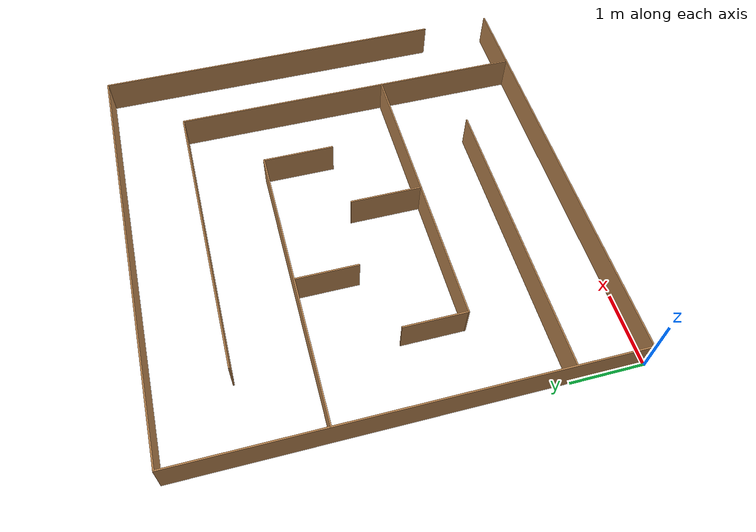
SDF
<?xml version='1.0'?>
<sdf version='1.6'>
  <model name='Circuite2'>
    <pose frame=''>3.00137 3.00193 0 0 -0 0</pose>
    <link name='Wall_10'>
      <collision name='Wall_10_Collision'>
        <geometry>
          <box>
            <size>6 0.02 0.5</size>
          </box>
        </geometry>
        <pose frame=''>0 0 0.25 0 -0 0</pose>
      </collision>
      <visual name='Wall_10_Visual'>
        <pose frame=''>0 0 0.25 0 -0 0</pose>
        <geometry>
          <box>
            <size>6 0.02 0.5</size>
          </box>
        </geometry>
        <material>
          <script>
            <uri>file://media/materials/scripts/gazebo.material</uri>
            <name>Gazebo/Wood</name>
          </script>
          <ambient>1 1 1 1</ambient>
        </material>
        <meta>
          <layer>0</layer>
        </meta>
      </visual>
      <pose frame=''>-0.000633 -2.99006 0 0 -0 3.14159</pose>
    </link>
    <link name='Wall_12'>
      <collision name='Wall_12_Collision'>
        <geometry>
          <box>
            <size>6 0.02 0.5</size>
          </box>
        </geometry>
        <pose frame=''>0 0 0.25 0 -0 0</pose>
      </collision>
      <visual name='Wall_12_Visual'>
        <pose frame=''>0 0 0.25 0 -0 0</pose>
        <geometry>
          <box>
            <size>6 0.02 0.5</size>
          </box>
        </geometry>
        <material>
          <script>
            <uri>file://media/materials/scripts/gazebo.material</uri>
            <name>Gazebo/Wood</name>
          </script>
          <ambient>1 1 1 1</ambient>
        </material>
        <meta>
          <layer>0</layer>
        </meta>
      </visual>
      <pose frame=''>-2.98997 4.8e-05 0 0 -0 -1.5708</pose>
    </link>
    <link name='Wall_14'>
      <collision name='Wall_14_Collision'>
        <geometry>
          <box>
            <size>6 0.02 0.5</size>
          </box>
        </geometry>
        <pose frame=''>0 0 0.25 0 -0 0</pose>
      </collision>
      <visual name='Wall_14_Visual'>
        <pose frame=''>0 0 0.25 0 -0 0</pose>
        <geometry>
          <box>
            <size>6 0.02 0.5</size>
          </box>
        </geometry>
        <material>
          <script>
            <uri>file://media/materials/scripts/gazebo.material</uri>
            <name>Gazebo/Wood</name>
          </script>
          <ambient>1 1 1 1</ambient>
        </material>
        <meta>
          <layer>0</layer>
        </meta>
      </visual>
      <pose frame=''>0.000566 2.99051 0 0 -0 0.000186</pose>
    </link>
    <link name='Wall_16'>
      <collision name='Wall_16_Collision'>
        <geometry>
          <box>
            <size>5 0.02 0.5</size>
          </box>
        </geometry>
        <pose frame=''>0 0 0.25 0 -0 0</pose>
      </collision>
      <visual name='Wall_16_Visual'>
        <pose frame=''>0 0 0.25 0 -0 0</pose>
        <geometry>
          <box>
            <size>5 0.02 0.5</size>
          </box>
        </geometry>
        <material>
          <script>
            <uri>file://media/materials/scripts/gazebo.material</uri>
            <name>Gazebo/Wood</name>
          </script>
          <ambient>1 1 1 1</ambient>
        </material>
        <meta>
          <layer>0</layer>
        </meta>
      </visual>
      <pose frame=''>2.99063 0.50107 0 0 -0 -1.5708</pose>
    </link>
    <link name='Wall_18'>
      <collision name='Wall_18_Collision'>
        <geometry>
          <box>
            <size>5 0.02 0.5</size>
          </box>
        </geometry>
        <pose frame=''>0 0 0.25 0 -0 0</pose>
      </collision>
      <visual name='Wall_18_Visual'>
        <pose frame=''>0 0 0.25 0 -0 0</pose>
        <geometry>
          <box>
            <size>5 0.02 0.5</size>
          </box>
        </geometry>
        <material>
          <script>
            <uri>file://media/materials/scripts/gazebo.material</uri>
            <name>Gazebo/Wood</name>
          </script>
          <ambient>1 1 1 1</ambient>
        </material>
        <meta>
          <layer>0</layer>
        </meta>
      </visual>
      <pose frame=''>1.99036 -0.501072 0 0 -0 1.5708</pose>
    </link>
    <link name='Wall_20'>
      <collision name='Wall_20_Collision'>
        <geometry>
          <box>
            <size>4 0.02 0.5</size>
          </box>
        </geometry>
        <pose frame=''>0 0 0.25 0 -0 0</pose>
      </collision>
      <visual name='Wall_20_Visual'>
        <pose frame=''>0 0 0.25 0 -0 0</pose>
        <geometry>
          <box>
            <size>4 0.02 0.5</size>
          </box>
        </geometry>
        <material>
          <script>
            <uri>file://media/materials/scripts/gazebo.material</uri>
            <name>Gazebo/Wood</name>
          </script>
          <ambient>1 1 1 1</ambient>
        </material>
        <meta>
          <layer>0</layer>
        </meta>
      </visual>
      <pose frame=''>-0.999408 -2.00245 0 0 -0 0</pose>
    </link>
    <link name='Wall_22'>
      <collision name='Wall_22_Collision'>
        <geometry>
          <box>
            <size>4 0.02 0.5</size>
          </box>
        </geometry>
        <pose frame=''>0 0 0.25 0 -0 0</pose>
      </collision>
      <visual name='Wall_22_Visual'>
        <pose frame=''>0 0 0.25 0 -0 0</pose>
        <geometry>
          <box>
            <size>4 0.02 0.5</size>
          </box>
        </geometry>
        <material>
          <script>
            <uri>file://media/materials/scripts/gazebo.material</uri>
            <name>Gazebo/Wood</name>
          </script>
          <ambient>1 1 1 1</ambient>
        </material>
        <meta>
          <layer>0</layer>
        </meta>
      </visual>
      <pose frame=''>0.000707 -0.993001 0 0 -0 3.14159</pose>
    </link>
    <link name='Wall_24'>
      <collision name='Wall_24_Collision'>
        <geometry>
          <box>
            <size>4 0.02 0.5</size>
          </box>
        </geometry>
        <pose frame=''>0 0 0.25 0 -0 0</pose>
      </collision>
      <visual name='Wall_24_Visual'>
        <pose frame=''>0 0 0.25 0 -0 0</pose>
        <geometry>
          <box>
            <size>4 0.02 0.5</size>
          </box>
        </geometry>
        <material>
          <script>
            <uri>file://media/materials/scripts/gazebo.material</uri>
            <name>Gazebo/Wood</name>
          </script>
          <ambient>1 1 1 1</ambient>
        </material>
        <meta>
          <layer>0</layer>
        </meta>
      </visual>
      <pose frame=''>-0.999243 0.994485 0 0 -0 3.14159</pose>
    </link>
    <link name='Wall_26'>
      <collision name='Wall_26_Collision'>
        <geometry>
          <box>
            <size>0.87 0.02 0.5</size>
          </box>
        </geometry>
        <pose frame=''>0 0 0.25 0 -0 0</pose>
      </collision>
      <visual name='Wall_26_Visual'>
        <pose frame=''>0 0 0.25 0 -0 0</pose>
        <geometry>
          <box>
            <size>0.87 0.02 0.5</size>
          </box>
        </geometry>
        <material>
          <script>
            <uri>file://media/materials/scripts/gazebo.material</uri>
            <name>Gazebo/Wood</name>
          </script>
          <ambient>1 1 1 1</ambient>
        </material>
        <meta>
          <layer>0</layer>
        </meta>
      </visual>
      <pose frame=''>-1.98922 -0.568016 0 0 -0 -1.5708</pose>
    </link>
    <link name='Wall_28'>
      <collision name='Wall_28_Collision'>
        <geometry>
          <box>
            <size>0.87 0.02 0.5</size>
          </box>
        </geometry>
        <pose frame=''>0 0 0.25 0 -0 0</pose>
      </collision>
      <visual name='Wall_28_Visual'>
        <pose frame=''>0 0 0.25 0 -0 0</pose>
        <geometry>
          <box>
            <size>0.87 0.02 0.5</size>
          </box>
        </geometry>
        <material>
          <script>
            <uri>file://media/materials/scripts/gazebo.material</uri>
            <name>Gazebo/Wood</name>
          </script>
          <ambient>1 1 1 1</ambient>
        </material>
        <meta>
          <layer>0</layer>
        </meta>
      </visual>
      <pose frame=''>-0.999171 0.568156 0 0 -0 -1.5708</pose>
    </link>
    <link name='Wall_30'>
      <collision name='Wall_30_Collision'>
        <geometry>
          <box>
            <size>1 0.02 0.5</size>
          </box>
        </geometry>
        <pose frame=''>0 0 0.25 0 -0 0</pose>
      </collision>
      <visual name='Wall_30_Visual'>
        <pose frame=''>0 0 0.25 0 -0 0</pose>
        <geometry>
          <box>
            <size>1 0.02 0.5</size>
          </box>
        </geometry>
        <material>
          <script>
            <uri>file://media/materials/scripts/gazebo.material</uri>
            <name>Gazebo/Wood</name>
          </script>
          <ambient>1 1 1 1</ambient>
        </material>
        <meta>
          <layer>0</layer>
        </meta>
      </visual>
      <pose frame=''>0.990167 0.503729 0 0 -0 -1.5708</pose>
    </link>
    <link name='Wall_32'>
      <collision name='Wall_32_Collision'>
        <geometry>
          <box>
            <size>1 0.02 0.5</size>
          </box>
        </geometry>
        <pose frame=''>0 0 0.25 0 -0 0</pose>
      </collision>
      <visual name='Wall_32_Visual'>
        <pose frame=''>0 0 0.25 0 -0 0</pose>
        <geometry>
          <box>
            <size>1 0.02 0.5</size>
          </box>
        </geometry>
        <material>
          <script>
            <uri>file://media/materials/scripts/gazebo.material</uri>
            <name>Gazebo/Wood</name>
          </script>
          <ambient>1 1 1 1</ambient>
        </material>
        <meta>
          <layer>0</layer>
        </meta>
      </visual>
      <pose frame=''>-0.008514 -0.502701 0 0 -0 -1.5708</pose>
    </link>
    <link name='Wall_34'>
      <collision name='Wall_34_Collision'>
        <geometry>
          <box>
            <size>4 0.02 0.5</size>
          </box>
        </geometry>
        <pose frame=''>0 0 0.25 0 -0 0</pose>
      </collision>
      <visual name='Wall_34_Visual'>
        <pose frame=''>0 0 0.25 0 -0 0</pose>
        <geometry>
          <box>
            <size>4 0.02 0.5</size>
          </box>
        </geometry>
        <material>
          <script>
            <uri>file://media/materials/scripts/gazebo.material</uri>
            <name>Gazebo/Wood</name>
          </script>
          <ambient>1 1 1 1</ambient>
        </material>
        <meta>
          <layer>0</layer>
        </meta>
      </visual>
      <pose frame=''>0.000131 1.98916 0 0 -0 3.14159</pose>
    </link>
    <static>1</static>
  </model>
</sdf>
